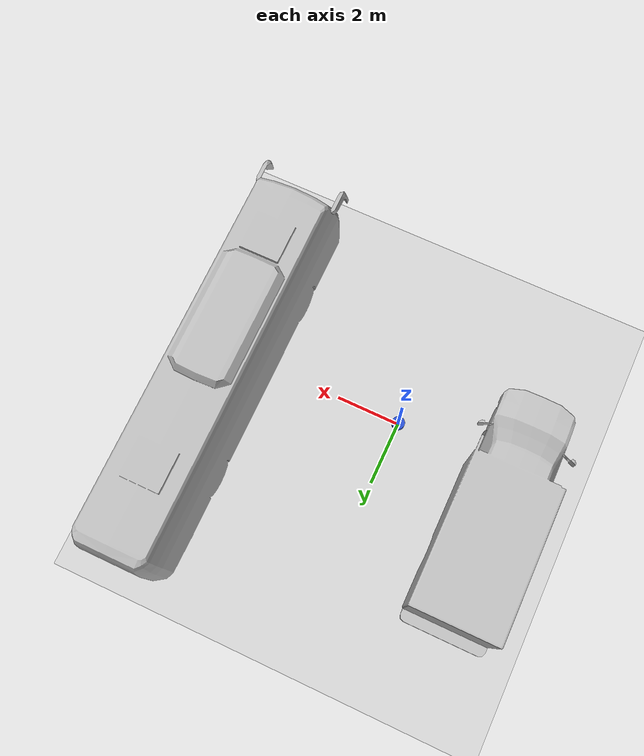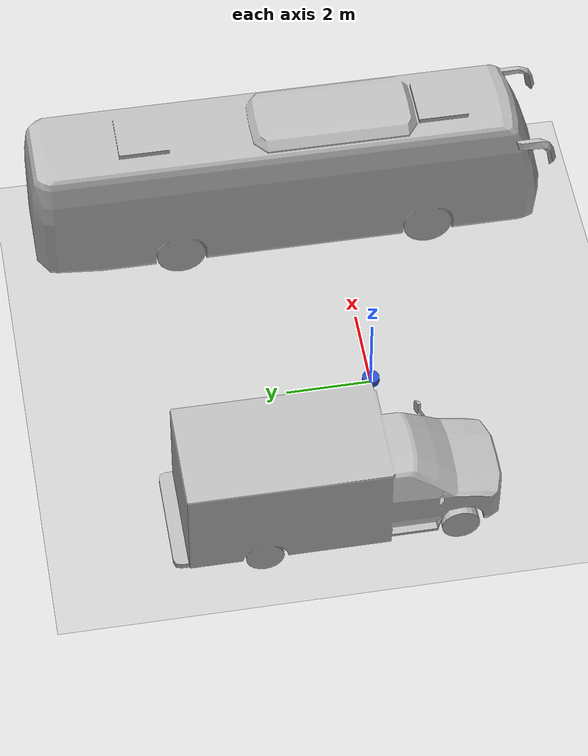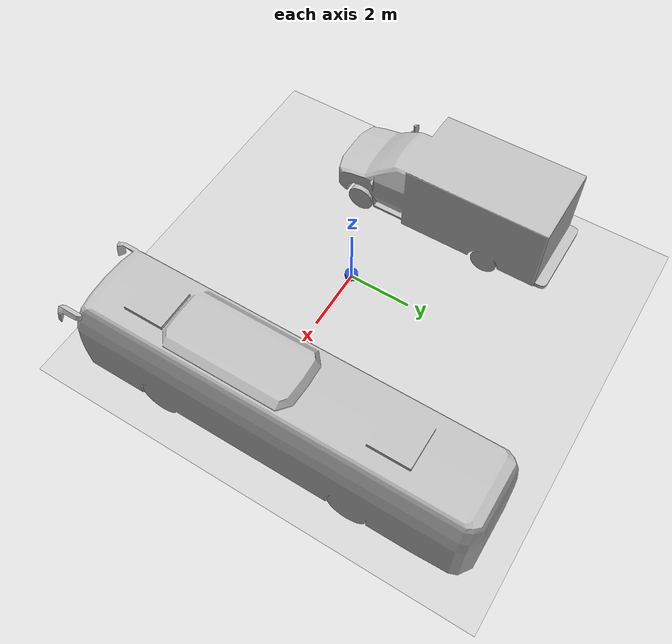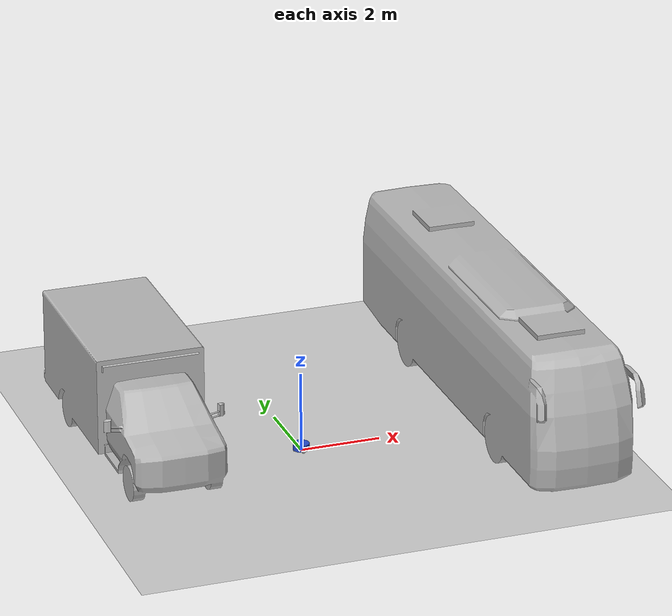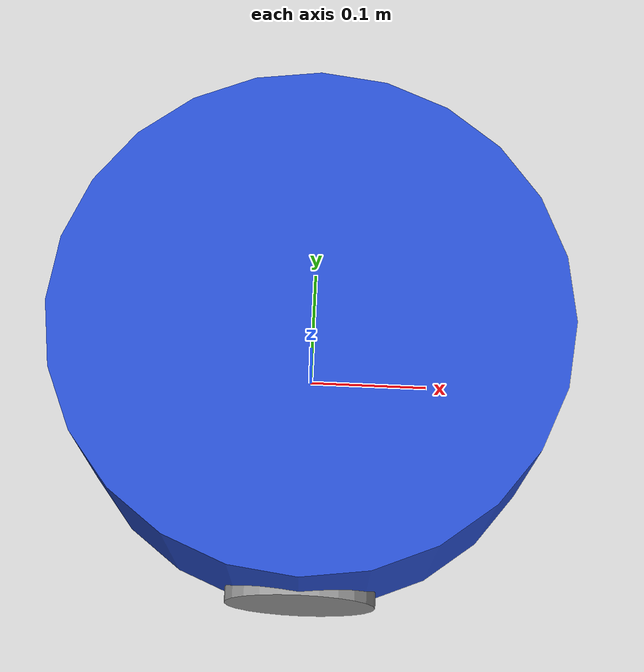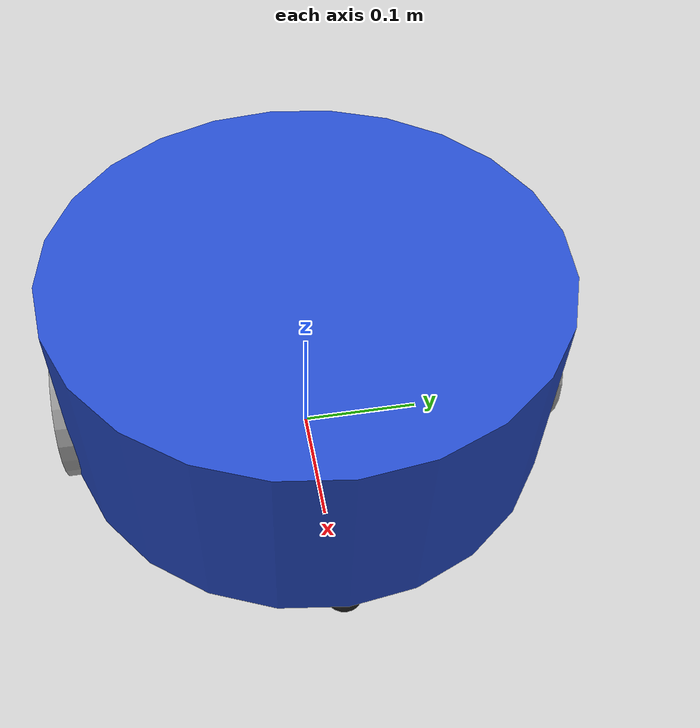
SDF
<sdf version="1.7">
 <world name="default">
  <light name="sun" type="directional">
   <pose>0 0 10 0 -0 0</pose>
   <diffuse>0.8 0.8 0.8 1</diffuse>
   <specular>0.2 0.2 0.2 1</specular>
   <attenuation>
    <range>1000</range>
    <constant>0.9</constant>
    <linear>0.01</linear>
    <quadratic>0.001</quadratic>
   </attenuation>
   <direction>-0.5 0.1 -0.9</direction>
   <spot><inner_angle>0</inner_angle><outer_angle>0</outer_angle><falloff>0</falloff></spot>
  </light>
  <model name="ground_plane">
   <static>1</static>
   <link name="link">
    <collision name="collision">
     <geometry><plane><normal>0 0 1</normal><size>100 100</size></plane></geometry>
     <surface><friction><ode><mu>100</mu><mu2>50</mu2></ode></friction></surface>
    </collision>
    <visual name="visual">
     <cast_shadows>0</cast_shadows>
     <geometry><plane><normal>0 0 1</normal><size>100 100</size></plane></geometry>
     <material>
      <script><uri>file://media/materials/scripts/gazebo.material</uri><name>Gazebo/Grey</name></script>
     </material>
    </visual>
   </link>
  </model>
  <gravity>0 0 -9.8</gravity>
  <magnetic_field>6e-06 2.3e-05 -4.2e-05</magnetic_field>
  <atmosphere type="adiabatic"/>
  <physics type="ode">
   <max_step_size>0.001</max_step_size>
   <real_time_factor>1</real_time_factor>
   <real_time_update_rate>1000</real_time_update_rate>
  </physics>
  <scene><ambient>0.4 0.4 0.4 1</ambient><background>0.7 0.7 0.7 1</background><shadows>1</shadows></scene>
  <spherical_coordinates>
   <surface_model>EARTH_WGS84</surface_model>
   <latitude_deg>0</latitude_deg>
   <longitude_deg>0</longitude_deg>
   <elevation>0</elevation>
   <heading_deg>0</heading_deg>
  </spherical_coordinates>
  <model name="mrobot">
   <link name="base_footprint">
    <inertial>
     <pose>0 0 0.11 0 -0 0</pose>
     <mass>1</mass>
     <inertia><ixx>0.0121333</ixx><ixy>0</ixy><ixz>0</ixz><iyy>0.0121333</iyy><iyz>0</iyz><izz>0.02</izz></inertia>
    </inertial>
    <collision name="base_footprint_fixed_joint_lump__base_link_collision">
     <pose>0 0 0.11 0 -0 0</pose>
     <geometry><cylinder><length>0.16</length><radius>0.2</radius></cylinder></geometry>
    </collision>
    <visual name="base_footprint_visual"><geometry><box><size>0.001 0.001 0.001</size></box></geometry></visual>
    <visual name="base_footprint_fixed_joint_lump__base_link_visual_1">
     <pose>0 0 0.11 0 -0 0</pose>
     <geometry><cylinder><length>0.16</length><radius>0.2</radius></cylinder></geometry>
     <material>
      <script><name>Gazebo/Blue</name><uri>file://media/materials/scripts/gazebo.material</uri></script>
     </material>
    </visual>
   </link>
   <joint name="back_caster_joint" type="revolute">
    <pose relative_to="base_footprint">0.18 0 0.015 0 -0 0</pose>
    <parent>base_footprint</parent>
    <child>back_caster_link</child>
    <axis>
     <xyz>0 1 0</xyz>
     <limit><lower>-1e+16</lower><upper>1e+16</upper></limit>
     <dynamics><spring_reference>0</spring_reference><spring_stiffness>0</spring_stiffness></dynamics>
    </axis>
   </joint>
   <link name="back_caster_link">
    <pose relative_to="back_caster_joint">0 0 0 0 -0 0</pose>
    <inertial>
     <mass>0.2</mass>
     <inertia><ixx>1.8e-05</ixx><ixy>0</ixy><ixz>0</ixz><iyy>1.8e-05</iyy><iyz>0</iyz><izz>1.8e-05</izz></inertia>
    </inertial>
    <collision name="back_caster_link_collision">
     <geometry><sphere><radius>0.015</radius></sphere></geometry>
    </collision>
    <visual name="back_caster_link_visual">
     <geometry><sphere><radius>0.015</radius></sphere></geometry>
     <material>
      <script><name>Gazebo/Black</name><uri>file://media/materials/scripts/gazebo.material</uri></script>
     </material>
    </visual>
   </link>
   <joint name="front_caster_joint" type="revolute">
    <pose relative_to="base_footprint">-0.18 0 0.015 0 -0 0</pose>
    <parent>base_footprint</parent>
    <child>front_caster_link</child>
    <axis>
     <xyz>0 1 0</xyz>
     <limit><lower>-1e+16</lower><upper>1e+16</upper></limit>
     <dynamics><spring_reference>0</spring_reference><spring_stiffness>0</spring_stiffness></dynamics>
    </axis>
   </joint>
   <link name="front_caster_link">
    <pose relative_to="front_caster_joint">0 0 0 0 -0 0</pose>
    <inertial>
     <mass>0.2</mass>
     <inertia><ixx>1.8e-05</ixx><ixy>0</ixy><ixz>0</ixz><iyy>1.8e-05</iyy><iyz>0</iyz><izz>1.8e-05</izz></inertia>
    </inertial>
    <collision name="front_caster_link_collision">
     <geometry><sphere><radius>0.015</radius></sphere></geometry>
    </collision>
    <visual name="front_caster_link_visual">
     <geometry><sphere><radius>0.015</radius></sphere></geometry>
     <material>
      <script><name>Gazebo/Black</name><uri>file://media/materials/scripts/gazebo.material</uri></script>
     </material>
    </visual>
   </link>
   <joint name="left_wheel_joint" type="revolute">
    <pose relative_to="base_footprint">0 0.19 0.06 0 -0 0</pose>
    <parent>base_footprint</parent>
    <child>left_wheel_link</child>
    <axis>
     <xyz>0 1 0</xyz>
     <limit><lower>-1e+16</lower><upper>1e+16</upper></limit>
     <dynamics><spring_reference>0</spring_reference><spring_stiffness>0</spring_stiffness></dynamics>
    </axis>
   </joint>
   <link name="left_wheel_link">
    <pose relative_to="left_wheel_joint">0 0 0 0 -0 0</pose>
    <inertial>
     <mass>0.2</mass>
     <inertia>
      <ixx>0.000190417</ixx>
      <ixy>0</ixy>
      <ixz>0</ixz>
      <iyy>0.000190417</iyy>
      <iyz>0</iyz>
      <izz>0.00036</izz>
     </inertia>
    </inertial>
    <collision name="left_wheel_link_collision">
     <pose>0 0 0 1.5708 -0 0</pose>
     <geometry><cylinder><length>0.025</length><radius>0.06</radius></cylinder></geometry>
    </collision>
    <visual name="left_wheel_link_visual">
     <pose>0 0 0 1.5708 -0 0</pose>
     <geometry><cylinder><length>0.025</length><radius>0.06</radius></cylinder></geometry>
     <material>
      <script><name>Gazebo/Gray</name><uri>file://media/materials/scripts/gazebo.material</uri></script>
     </material>
    </visual>
   </link>
   <joint name="right_wheel_joint" type="revolute">
    <pose relative_to="base_footprint">0 -0.19 0.06 0 -0 0</pose>
    <parent>base_footprint</parent>
    <child>right_wheel_link</child>
    <axis>
     <xyz>0 1 0</xyz>
     <limit><lower>-1e+16</lower><upper>1e+16</upper></limit>
     <dynamics><spring_reference>0</spring_reference><spring_stiffness>0</spring_stiffness></dynamics>
    </axis>
   </joint>
   <link name="right_wheel_link">
    <pose relative_to="right_wheel_joint">0 0 0 0 -0 0</pose>
    <inertial>
     <mass>0.2</mass>
     <inertia>
      <ixx>0.000190417</ixx>
      <ixy>0</ixy>
      <ixz>0</ixz>
      <iyy>0.000190417</iyy>
      <iyz>0</iyz>
      <izz>0.00036</izz>
     </inertia>
    </inertial>
    <collision name="right_wheel_link_collision">
     <pose>0 0 0 1.5708 -0 0</pose>
     <geometry><cylinder><length>0.025</length><radius>0.06</radius></cylinder></geometry>
    </collision>
    <visual name="right_wheel_link_visual">
     <pose>0 0 0 1.5708 -0 0</pose>
     <geometry><cylinder><length>0.025</length><radius>0.06</radius></cylinder></geometry>
     <material>
      <script><name>Gazebo/Gray</name><uri>file://media/materials/scripts/gazebo.material</uri></script>
     </material>
    </visual>
   </link>
   <static>0</static>
   <plugin name="differential_drive_controller" filename="libgazebo_ros_diff_drive.so">
    <rosDebugLevel>Debug</rosDebugLevel>
    <publishWheelTF>1</publishWheelTF>
    <robotNamespace>/</robotNamespace>
    <publishTf>1</publishTf>
    <publishWheelJointState>1</publishWheelJointState>
    <alwaysOn>1</alwaysOn>
    <updateRate>100.0</updateRate>
    <legacyMode>1</legacyMode>
    <leftJoint>left_wheel_joint</leftJoint>
    <rightJoint>right_wheel_joint</rightJoint>
    <wheelSeparation>0.38</wheelSeparation>
    <wheelDiameter>0.12</wheelDiameter>
    <broadcastTF>1</broadcastTF>
    <wheelTorque>30</wheelTorque>
    <wheelAcceleration>1.8</wheelAcceleration>
    <commandTopic>cmd_vel</commandTopic>
    <odometryFrame>odom</odometryFrame>
    <odometryTopic>odom</odometryTopic>
    <robotBaseFrame>base_footprint</robotBaseFrame>
   </plugin>
   <pose>-0.000394 0.000512 0 0 0 -0.001352</pose>
  </model>
  <model name="ambulance">
   <static>1</static>
   <link name="link">
    <collision name="collision">
     <geometry>
      <mesh><scale>0.0254 0.0254 0.0254</scale><uri>model://ambulance/meshes/ambulance.obj</uri></mesh>
     </geometry>
    </collision>
    <visual name="visual">
     <geometry>
      <mesh><scale>0.0254 0.0254 0.0254</scale><uri>model://ambulance/meshes/ambulance.obj</uri></mesh>
     </geometry>
    </visual>
   </link>
   <pose>-3.61081 1.64626 0 0 -0 0</pose>
  </model>
  <model name="bus">
   <static>1</static>
   <link name="link">
    <collision name="collision">
     <geometry><mesh><scale>0.01 0.01 0.01</scale><uri>model://bus/meshes/bus.obj</uri></mesh></geometry>
    </collision>
    <visual name="visual">
     <geometry><mesh><scale>0.01 0.01 0.01</scale><uri>model://bus/meshes/bus.obj</uri></mesh></geometry>
    </visual>
   </link>
   <pose>5.36885 1.10201 0 0 -0 0</pose>
  </model>
 </world>
</sdf>
